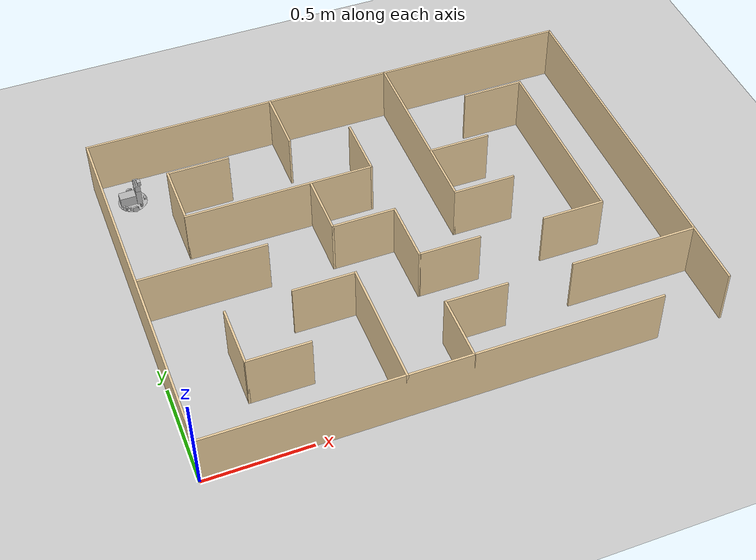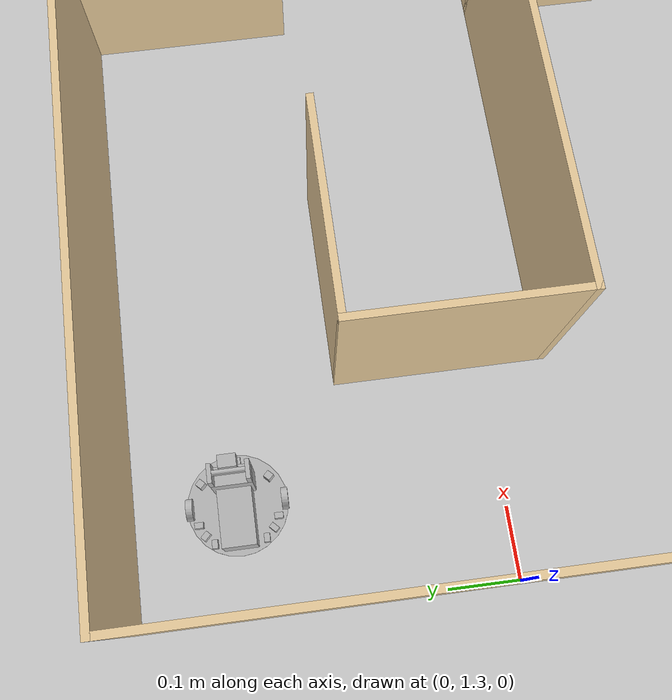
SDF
<?xml version="1.0" ?>
<sdf version="1.4">
  <world name="default">
    <scene>
      <ambient>0.5 0.5 0.5 1.0</ambient>
      <shadows>0</shadows>
    </scene>
    <include>
      <uri>model://ground_plane</uri>
    </include>
    <include>
      <uri>model://sun</uri>
    </include>
    <include>
      <uri>model://iti0201_robot</uri>
      <name>iti0201_robot</name>
      <pose>0.15 1.67 0 0 0 0</pose> <!-- this is the robot's starting position, if you know where it should be, you can change this -->
    </include>

    <model name='newMap1'>
    <pose frame=''>1.21 0.91 0 0 -0 0</pose>
    <link name='Wall_0'>
      <collision name='Wall_0_Collision'>
        <geometry>
          <box>
            <size>0.31 0.01 0.28</size>
          </box>
        </geometry>
        <pose frame=''>0 0 0.14 0 -0 0</pose>
      </collision>
      <visual name='Wall_0_Visual'>
        <pose frame=''>0 0 0.14 0 -0 0</pose>
        <geometry>
          <box>
            <size>0.31 0.01 0.28</size>
          </box>
        </geometry>
        <material>
          <script>
            <uri>file://media/materials/scripts/gazebo.material</uri>
            <name>Gazebo/Grey</name>
          </script>
          <ambient>0.921569 0.807843 0.615686 1</ambient>
        </material>
        <meta>
          <layer>0</layer>
        </meta>
      </visual>
      <pose frame=''>-0.3 0.76 0 0 0 -1.5708</pose>
    </link>
    <link name='Wall_11'>
      <collision name='Wall_11_Collision'>
        <geometry>
          <box>
            <size>2.43 0.01 0.28</size>
          </box>
        </geometry>
        <pose frame=''>0 0 0.14 0 -0 0</pose>
      </collision>
      <visual name='Wall_11_Visual'>
        <pose frame=''>0 0 0.14 0 -0 0</pose>
        <geometry>
          <box>
            <size>2.43 0.01 0.28</size>
          </box>
        </geometry>
        <material>
          <script>
            <uri>file://media/materials/scripts/gazebo.material</uri>
            <name>Gazebo/Grey</name>
          </script>
          <ambient>0.921569 0.807843 0.615686 1</ambient>
        </material>
        <meta>
          <layer>0</layer>
        </meta>
      </visual>
      <pose frame=''>0 0.91 0 0 -0 0</pose>
    </link>
    <link name='Wall_13'>
      <collision name='Wall_13_Collision'>
        <geometry>
          <box>
            <size>1.83 0.01 0.28</size>
          </box>
        </geometry>
        <pose frame=''>0 0 0.14 0 -0 0</pose>
      </collision>
      <visual name='Wall_13_Visual'>
        <pose frame=''>0 0 0.14 0 -0 0</pose>
        <geometry>
          <box>
            <size>1.83 0.01 0.28</size>
          </box>
        </geometry>
        <material>
          <script>
            <uri>file://media/materials/scripts/gazebo.material</uri>
            <name>Gazebo/Grey</name>
          </script>
          <ambient>0.921569 0.807843 0.615686 1</ambient>
        </material>
        <meta>
          <layer>0</layer>
        </meta>
      </visual>
      <pose frame=''>-1.21 0 0 0 -0 1.5708</pose>
    </link>
    <link name='Wall_15'>
      <collision name='Wall_15_Collision'>
        <geometry>
          <box>
            <size>2.11 0.01 0.28</size>
          </box>
        </geometry>
        <pose frame=''>0 0 0.14 0 -0 0</pose>
      </collision>
      <visual name='Wall_15_Visual'>
        <pose frame=''>0 0 0.14 0 -0 0</pose>
        <geometry>
          <box>
            <size>2.11 0.01 0.28</size>
          </box>
        </geometry>
        <material>
          <script>
            <uri>file://media/materials/scripts/gazebo.material</uri>
            <name>Gazebo/Grey</name>
          </script>
          <ambient>0.921569 0.807843 0.615686 1</ambient>
        </material>
        <meta>
          <layer>0</layer>
        </meta>
      </visual>
      <pose frame=''>-0.16 -0.91 0 0 -0 0</pose>
    </link>
    <link name='Wall_17'>
      <collision name='Wall_17_Collision'>
        <geometry>
          <box>
            <size>0.3 0.01 0.28</size>
          </box>
        </geometry>
        <pose frame=''>0 0 0.14 0 -0 0</pose>
      </collision>
      <visual name='Wall_17_Visual'>
        <pose frame=''>0 0 0.14 0 -0 0</pose>
        <geometry>
          <box>
            <size>0.3 0.01 0.28</size>
          </box>
        </geometry>
        <material>
          <script>
            <uri>file://media/materials/scripts/gazebo.material</uri>
            <name>Gazebo/Grey</name>
          </script>
          <ambient>0.921569 0.807843 0.615686 1</ambient>
        </material>
        <meta>
          <layer>0</layer>
        </meta>
      </visual>
      <pose frame=''>-0.445 -0.3 0 0 -0 0</pose>
    </link>
    <link name='Wall_2'>
      <collision name='Wall_2_Collision'>
        <geometry>
          <box>
            <size>0.61 0.01 0.28</size>
          </box>
        </geometry>
        <pose frame=''>0 0 0.14 0 -0 0</pose>
      </collision>
      <visual name='Wall_2_Visual'>
        <pose frame=''>0 0 0.14 0 -0 0</pose>
        <geometry>
          <box>
            <size>0.61 0.01 0.28</size>
          </box>
        </geometry>
        <material>
          <script>
            <uri>file://media/materials/scripts/gazebo.material</uri>
            <name>Gazebo/Grey</name>
          </script>
          <ambient>0.921569 0.807843 0.615686 1</ambient>
        </material>
        <meta>
          <layer>0</layer>
        </meta>
      </visual>
      <pose frame=''>-0.91 0 0 0 -0 0</pose>
    </link>
    <link name='Wall_21'>
      <collision name='Wall_21_Collision'>
        <geometry>
          <box>
            <size>0.62 0.01 0.28</size>
          </box>
        </geometry>
        <pose frame=''>0 0 0.14 0 -0 0</pose>
      </collision>
      <visual name='Wall_21_Visual'>
        <pose frame=''>0 0 0.14 0 -0 0</pose>
        <geometry>
          <box>
            <size>0.62 0.01 0.28</size>
          </box>
        </geometry>
        <material>
          <script>
            <uri>file://media/materials/scripts/gazebo.material</uri>
            <name>Gazebo/Grey</name>
          </script>
          <ambient>0.921569 0.807843 0.615686 1</ambient>
        </material>
        <meta>
          <layer>0</layer>
        </meta>
      </visual>
      <pose frame=''>-0.3 -0.605 0 0 0 -1.5708</pose>
    </link>
    <link name='Wall_23'>
      <collision name='Wall_23_Collision'>
        <geometry>
          <box>
            <size>0.3 0.01 0.28</size>
          </box>
        </geometry>
        <pose frame=''>0 0 0.14 0 -0 0</pose>
      </collision>
      <visual name='Wall_23_Visual'>
        <pose frame=''>0 0 0.14 0 -0 0</pose>
        <geometry>
          <box>
            <size>0.3 0.01 0.28</size>
          </box>
        </geometry>
        <material>
          <script>
            <uri>file://media/materials/scripts/gazebo.material</uri>
            <name>Gazebo/Grey</name>
          </script>
          <ambient>0.921569 0.807843 0.615686 1</ambient>
        </material>
        <meta>
          <layer>0</layer>
        </meta>
      </visual>
      <pose frame=''>0.445 0 0 0 -0 0</pose>
    </link>
    <link name='Wall_25'>
      <collision name='Wall_25_Collision'>
        <geometry>
          <box>
            <size>0.3 0.01 0.28</size>
          </box>
        </geometry>
        <pose frame=''>0 0 0.14 0 -0 0</pose>
      </collision>
      <visual name='Wall_25_Visual'>
        <pose frame=''>0 0 0.14 0 -0 0</pose>
        <geometry>
          <box>
            <size>0.3 0.01 0.28</size>
          </box>
        </geometry>
        <material>
          <script>
            <uri>file://media/materials/scripts/gazebo.material</uri>
            <name>Gazebo/Grey</name>
          </script>
          <ambient>0.921569 0.807843 0.615686 1</ambient>
        </material>
        <meta>
          <layer>0</layer>
        </meta>
      </visual>
      <pose frame=''>0.445 0.3 0 0 -0 0</pose>
    </link>
    <link name='Wall_28'>
      <collision name='Wall_28_Collision'>
        <geometry>
          <box>
            <size>0.92 0.01 0.28</size>
          </box>
        </geometry>
        <pose frame=''>0 0 0.14 0 -0 0</pose>
      </collision>
      <visual name='Wall_28_Visual'>
        <pose frame=''>0 0 0.14 0 -0 0</pose>
        <geometry>
          <box>
            <size>0.92 0.01 0.28</size>
          </box>
        </geometry>
        <material>
          <script>
            <uri>file://media/materials/scripts/gazebo.material</uri>
            <name>Gazebo/Grey</name>
          </script>
          <ambient>0.921569 0.807843 0.615686 1</ambient>
        </material>
        <meta>
          <layer>0</layer>
        </meta>
      </visual>
      <pose frame=''>0.3 0.455 0 0 0 -1.5708</pose>
    </link>
    <link name='Wall_30'>
      <collision name='Wall_30_Collision'>
        <geometry>
          <box>
            <size>0.3 0.01 0.28</size>
          </box>
        </geometry>
        <pose frame=''>0 0 0.14 0 -0 0</pose>
      </collision>
      <visual name='Wall_30_Visual'>
        <pose frame=''>0 0 0.14 0 -0 0</pose>
        <geometry>
          <box>
            <size>0.3 0.01 0.28</size>
          </box>
        </geometry>
        <material>
          <script>
            <uri>file://media/materials/scripts/gazebo.material</uri>
            <name>Gazebo/Grey</name>
          </script>
          <ambient>0.921569 0.807843 0.615686 1</ambient>
        </material>
        <meta>
          <layer>0</layer>
        </meta>
      </visual>
      <pose frame=''>0.755 -0.3 0 0 -0 3.14159</pose>
    </link>
    <link name='Wall_32'>
      <collision name='Wall_32_Collision'>
        <geometry>
          <box>
            <size>0.91 0.01 0.28</size>
          </box>
        </geometry>
        <pose frame=''>0 0 0.14 0 -0 0</pose>
      </collision>
      <visual name='Wall_32_Visual'>
        <pose frame=''>0 0 0.14 0 -0 0</pose>
        <geometry>
          <box>
            <size>0.91 0.01 0.28</size>
          </box>
        </geometry>
        <material>
          <script>
            <uri>file://media/materials/scripts/gazebo.material</uri>
            <name>Gazebo/Grey</name>
          </script>
          <ambient>0.921569 0.807843 0.615686 1</ambient>
        </material>
        <meta>
          <layer>0</layer>
        </meta>
      </visual>
      <pose frame=''>0.9 0.15 0 0 0 -1.5708</pose>
    </link>
    <link name='Wall_34'>
      <collision name='Wall_34_Collision'>
        <geometry>
          <box>
            <size>0.3 0.01 0.28</size>
          </box>
        </geometry>
        <pose frame=''>0 0 0.14 0 -0 0</pose>
      </collision>
      <visual name='Wall_34_Visual'>
        <pose frame=''>0 0 0.14 0 -0 0</pose>
        <geometry>
          <box>
            <size>0.3 0.01 0.28</size>
          </box>
        </geometry>
        <material>
          <script>
            <uri>file://media/materials/scripts/gazebo.material</uri>
            <name>Gazebo/Grey</name>
          </script>
          <ambient>0.921569 0.807843 0.615686 1</ambient>
        </material>
        <meta>
          <layer>0</layer>
        </meta>
      </visual>
      <pose frame=''>0.755 0.6 0 0 -0 0</pose>
    </link>
    <link name='Wall_36'>
      <collision name='Wall_36_Collision'>
        <geometry>
          <box>
            <size>0.61 0.01 0.28</size>
          </box>
        </geometry>
        <pose frame=''>0 0 0.14 0 -0 0</pose>
      </collision>
      <visual name='Wall_36_Visual'>
        <pose frame=''>0 0 0.14 0 -0 0</pose>
        <geometry>
          <box>
            <size>0.61 0.01 0.28</size>
          </box>
        </geometry>
        <material>
          <script>
            <uri>file://media/materials/scripts/gazebo.material</uri>
            <name>Gazebo/Grey</name>
          </script>
          <ambient>0.921569 0.807843 0.615686 1</ambient>
        </material>
        <meta>
          <layer>0</layer>
        </meta>
      </visual>
      <pose frame=''>0.91 -0.6 0 0 -0 0</pose>
    </link>
    <link name='Wall_40'>
      <collision name='Wall_40_Collision'>
        <geometry>
          <box>
            <size>0.3 0.01 0.28</size>
          </box>
        </geometry>
        <pose frame=''>0 0 0.14 0 -0 0</pose>
      </collision>
      <visual name='Wall_40_Visual'>
        <pose frame=''>0 0 0.14 0 -0 0</pose>
        <geometry>
          <box>
            <size>0.3 0.01 0.28</size>
          </box>
        </geometry>
        <material>
          <script>
            <uri>file://media/materials/scripts/gazebo.material</uri>
            <name>Gazebo/Grey</name>
          </script>
          <ambient>0.921569 0.807843 0.615686 1</ambient>
        </material>
        <meta>
          <layer>0</layer>
        </meta>
      </visual>
      <pose frame=''>0.145 -0.6 0 0 -0 0</pose>
    </link>
    <link name='Wall_42'>
      <collision name='Wall_42_Collision'>
        <geometry>
          <box>
            <size>0.32 0.01 0.28</size>
          </box>
        </geometry>
        <pose frame=''>0 0 0.14 0 -0 0</pose>
      </collision>
      <visual name='Wall_42_Visual'>
        <pose frame=''>0 0 0.14 0 -0 0</pose>
        <geometry>
          <box>
            <size>0.32 0.01 0.28</size>
          </box>
        </geometry>
        <material>
          <script>
            <uri>file://media/materials/scripts/gazebo.material</uri>
            <name>Gazebo/Grey</name>
          </script>
          <ambient>0.921569 0.807843 0.615686 1</ambient>
        </material>
        <meta>
          <layer>0</layer>
        </meta>
      </visual>
      <pose frame=''>0 -0.755 0 0 -0 1.5708</pose>
    </link>
    <link name='Wall_44'>
      <collision name='Wall_44_Collision'>
        <geometry>
          <box>
            <size>0.3 0.01 0.28</size>
          </box>
        </geometry>
        <pose frame=''>0 0 0.14 0 -0 0</pose>
      </collision>
      <visual name='Wall_44_Visual'>
        <pose frame=''>0 0 0.14 0 -0 0</pose>
        <geometry>
          <box>
            <size>0.3 0.01 0.28</size>
          </box>
        </geometry>
        <material>
          <script>
            <uri>file://media/materials/scripts/gazebo.material</uri>
            <name>Gazebo/Grey</name>
          </script>
          <ambient>0.921569 0.807843 0.615686 1</ambient>
        </material>
        <meta>
          <layer>0</layer>
        </meta>
      </visual>
      <pose frame=''>0.145 -0.3 0 0 -0 0</pose>
    </link>
    <link name='Wall_46'>
      <collision name='Wall_46_Collision'>
        <geometry>
          <box>
            <size>0.31 0.01 0.28</size>
          </box>
        </geometry>
        <pose frame=''>0 0 0.14 0 -0 0</pose>
      </collision>
      <visual name='Wall_46_Visual'>
        <pose frame=''>0 0 0.14 0 -0 0</pose>
        <geometry>
          <box>
            <size>0.31 0.01 0.28</size>
          </box>
        </geometry>
        <material>
          <script>
            <uri>file://media/materials/scripts/gazebo.material</uri>
            <name>Gazebo/Grey</name>
          </script>
          <ambient>0.921569 0.807843 0.615686 1</ambient>
        </material>
        <meta>
          <layer>0</layer>
        </meta>
      </visual>
      <pose frame=''>0 -0.15 0 0 0 -1.5708</pose>
    </link>
    <link name='Wall_48'>
      <collision name='Wall_48_Collision'>
        <geometry>
          <box>
            <size>0.31 0.01 0.28</size>
          </box>
        </geometry>
        <pose frame=''>0 0 0.14 0 -0 0</pose>
      </collision>
      <visual name='Wall_48_Visual'>
        <pose frame=''>0 0 0.14 0 -0 0</pose>
        <geometry>
          <box>
            <size>0.31 0.01 0.28</size>
          </box>
        </geometry>
        <material>
          <script>
            <uri>file://media/materials/scripts/gazebo.material</uri>
            <name>Gazebo/Grey</name>
          </script>
          <ambient>0.921569 0.807843 0.615686 1</ambient>
        </material>
        <meta>
          <layer>0</layer>
        </meta>
      </visual>
      <pose frame=''>-0.15 0 0 0 -0 0</pose>
    </link>
    <link name='Wall_5'>
      <collision name='Wall_5_Collision'>
        <geometry>
          <box>
            <size>0.3 0.01 0.28</size>
          </box>
        </geometry>
        <pose frame=''>0 0 0.14 0 -0 0</pose>
      </collision>
      <visual name='Wall_5_Visual'>
        <pose frame=''>0 0 0.14 0 -0 0</pose>
        <geometry>
          <box>
            <size>0.3 0.01 0.28</size>
          </box>
        </geometry>
        <material>
          <script>
            <uri>file://media/materials/scripts/gazebo.material</uri>
            <name>Gazebo/Grey</name>
          </script>
          <ambient>0.921569 0.807843 0.615686 1</ambient>
        </material>
        <meta>
          <layer>0</layer>
        </meta>
      </visual>
      <pose frame=''>-0.9 -0.455 0 0 -0 1.5708</pose>
    </link>
    <link name='Wall_50'>
      <collision name='Wall_50_Collision'>
        <geometry>
          <box>
            <size>0.31 0.01 0.28</size>
          </box>
        </geometry>
        <pose frame=''>0 0 0.14 0 -0 0</pose>
      </collision>
      <visual name='Wall_50_Visual'>
        <pose frame=''>0 0 0.14 0 -0 0</pose>
        <geometry>
          <box>
            <size>0.31 0.01 0.28</size>
          </box>
        </geometry>
        <material>
          <script>
            <uri>file://media/materials/scripts/gazebo.material</uri>
            <name>Gazebo/Grey</name>
          </script>
          <ambient>0.921569 0.807843 0.615686 1</ambient>
        </material>
        <meta>
          <layer>0</layer>
        </meta>
      </visual>
      <pose frame=''>-0.3 0.15 0 0 0 -1.5708</pose>
    </link>
    <link name='Wall_52'>
      <collision name='Wall_52_Collision'>
        <geometry>
          <box>
            <size>0.3 0.01 0.28</size>
          </box>
        </geometry>
        <pose frame=''>0 0 0.14 0 -0 0</pose>
      </collision>
      <visual name='Wall_52_Visual'>
        <pose frame=''>0 0 0.14 0 -0 0</pose>
        <geometry>
          <box>
            <size>0.3 0.01 0.28</size>
          </box>
        </geometry>
        <material>
          <script>
            <uri>file://media/materials/scripts/gazebo.material</uri>
            <name>Gazebo/Grey</name>
          </script>
          <ambient>0.921569 0.807843 0.615686 1</ambient>
        </material>
        <meta>
          <layer>0</layer>
        </meta>
      </visual>
      <pose frame=''>0 0.445 0 0 -0 1.5708</pose>
    </link>
    <link name='Wall_54'>
      <collision name='Wall_54_Collision'>
        <geometry>
          <box>
            <size>0.91 0.01 0.28</size>
          </box>
        </geometry>
        <pose frame=''>0 0 0.14 0 -0 0</pose>
      </collision>
      <visual name='Wall_54_Visual'>
        <pose frame=''>0 0 0.14 0 -0 0</pose>
        <geometry>
          <box>
            <size>0.91 0.01 0.28</size>
          </box>
        </geometry>
        <material>
          <script>
            <uri>file://media/materials/scripts/gazebo.material</uri>
            <name>Gazebo/Grey</name>
          </script>
          <ambient>0.921569 0.807843 0.615686 1</ambient>
        </material>
        <meta>
          <layer>0</layer>
        </meta>
      </visual>
      <pose frame=''>-0.45 0.3 0 0 -0 0</pose>
    </link>
    <link name='Wall_56'>
      <collision name='Wall_56_Collision'>
        <geometry>
          <box>
            <size>0.31 0.01 0.28</size>
          </box>
        </geometry>
        <pose frame=''>0 0 0.14 0 -0 0</pose>
      </collision>
      <visual name='Wall_56_Visual'>
        <pose frame=''>0 0 0.14 0 -0 0</pose>
        <geometry>
          <box>
            <size>0.31 0.01 0.28</size>
          </box>
        </geometry>
        <material>
          <script>
            <uri>file://media/materials/scripts/gazebo.material</uri>
            <name>Gazebo/Grey</name>
          </script>
          <ambient>0.921569 0.807843 0.615686 1</ambient>
        </material>
        <meta>
          <layer>0</layer>
        </meta>
      </visual>
      <pose frame=''>-0.9 0.45 0 0 -0 1.5708</pose>
    </link>
    <link name='Wall_58'>
      <collision name='Wall_58_Collision'>
        <geometry>
          <box>
            <size>0.3 0.01 0.28</size>
          </box>
        </geometry>
        <pose frame=''>0 0 0.14 0 -0 0</pose>
      </collision>
      <visual name='Wall_58_Visual'>
        <pose frame=''>0 0 0.14 0 -0 0</pose>
        <geometry>
          <box>
            <size>0.3 0.01 0.28</size>
          </box>
        </geometry>
        <material>
          <script>
            <uri>file://media/materials/scripts/gazebo.material</uri>
            <name>Gazebo/Grey</name>
          </script>
          <ambient>0.921569 0.807843 0.615686 1</ambient>
        </material>
        <meta>
          <layer>0</layer>
        </meta>
      </visual>
      <pose frame=''>-0.755 0.6 0 0 -0 0</pose>
    </link>
    <link name='Wall_7'>
      <collision name='Wall_7_Collision'>
        <geometry>
          <box>
            <size>0.3 0.01 0.28</size>
          </box>
        </geometry>
        <pose frame=''>0 0 0.14 0 -0 0</pose>
      </collision>
      <visual name='Wall_7_Visual'>
        <pose frame=''>0 0 0.14 0 -0 0</pose>
        <geometry>
          <box>
            <size>0.3 0.01 0.28</size>
          </box>
        </geometry>
        <material>
          <script>
            <uri>file://media/materials/scripts/gazebo.material</uri>
            <name>Gazebo/Grey</name>
          </script>
          <ambient>0.921569 0.807843 0.615686 1</ambient>
        </material>
        <meta>
          <layer>0</layer>
        </meta>
      </visual>
      <pose frame=''>-0.755 -0.6 0 0 -0 0</pose>
    </link>
    <link name='Wall_9'>
      <collision name='Wall_9_Collision'>
        <geometry>
          <box>
            <size>1.83 0.01 0.28</size>
          </box>
        </geometry>
        <pose frame=''>0 0 0.14 0 -0 0</pose>
      </collision>
      <visual name='Wall_9_Visual'>
        <pose frame=''>0 0 0.14 0 -0 0</pose>
        <geometry>
          <box>
            <size>1.83 0.01 0.28</size>
          </box>
        </geometry>
        <material>
          <script>
            <uri>file://media/materials/scripts/gazebo.material</uri>
            <name>Gazebo/Grey</name>
          </script>
          <ambient>0.921569 0.807843 0.615686 1</ambient>
        </material>
        <meta>
          <layer>0</layer>
        </meta>
      </visual>
      <pose frame=''>1.21 0 0 0 0 -1.5708</pose>
    </link>
    <static>1</static>
  </model>

  </world>
</sdf>

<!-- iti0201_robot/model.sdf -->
<sdf version='1.4'>
  	<model name="iti0201_robot">
  		<static>false</static>

      <!-- LINK 1: Chassis, connect wheels and base to this. -->
      <link name="chassis">
        <pose>0 0 0.0152 0 0 0</pose>
      </link>

      <joint type="fixed" name="chassis_to_base">
        <pose>0 0 0 0 0 0</pose>
        <child>base</child>
        <parent>chassis</parent>
        <axis>
          <xyz>0 0 0</xyz>
        </axis>
      </joint>

      <!-- LINK 2: Base, contains caster wheels, base, brainbox and base for camera stand. -->
  		<link name='base'>
        <pose>0 0 .006 0 0 0</pose>

          <inertial>
            <mass>50</mass>
          </inertial>

          <collision name='base_collision'>
            <geometry>
              <cylinder>
                <radius>.069912</radius>
                <length>0.001591</length>
              </cylinder>
            </geometry>
          </collision>

          <visual name='base_visual'>
            <geometry>
              <cylinder>
                <radius>.069912</radius>
                <length>0.001591</length>
              </cylinder>
            </geometry>
          </visual>

          <collision name="brainbox_collision">
            <pose>-0.022 0 0.02641535 0 0 0</pose>
            <geometry>
              <box>
                <size>.077304 .0468221 .0512397</size>
              </box>
            </geometry>
          </collision>

          <visual name="brainbox_visual">
            <pose>-0.022 0 0.02641535 0 0 0</pose>
            <geometry>
              <box>
                <size>.077304 .0468221 .0512397</size>
              </box>
            </geometry>
          </visual>

          <collision name="camera_stand_collision">
            <pose>0.02940475 0 0.0402758 0 0 0</pose>
            <geometry>
              <box>
                <size>.0255021 .0553499 .0789606</size>
              </box>
            </geometry>
          </collision>

          <visual name="camera_stand_visual">
            <pose>0.02940475 0 0.0402758 0 0 0</pose>
            <geometry>
              <box>
                <size>.0255021 .0553499 .0789606</size>
              </box>
            </geometry>
          </visual>

          <collision name="camera_stand_right_wall_collision">
          <pose>0.02940475 -0.02467495 0.0970561 0 0 0</pose>
            <geometry>
              <box>
                <size>.0255021 .006 .0346</size>
              </box>
            </geometry>
          </collision>

          <visual name="camera_stand_right_wall_visual">
          <pose>0.02940475 -0.02467495 0.0970561 0 0 0</pose>
            <geometry>
              <box>
                <size>.0255021 .006 .0346</size>
              </box>
            </geometry>
          </visual>

          <collision name="camera_stand_left_wall_collision">
          <pose>0.02940475 0.02467495 0.0970561 0 0 0</pose>
            <geometry>
              <box>
                <size>.0255021 .006 .0346</size>
              </box>
            </geometry>
          </collision>

          <visual name="camera_stand_left_wall_visual">
          <pose>0.02940475 0.02467495 0.0970561 0 0 0</pose>
            <geometry>
              <box>
                <size>.0255021 .006 .0346</size>
              </box>
            </geometry>
          </visual>

          <collision name='front_caster_collision'>
            <pose>0.035 0 -0.001 0 0 0</pose>
            <geometry>
                <sphere>
                <radius>.004648</radius>
              </sphere>
            </geometry>

            <surface>
              <friction>
                <ode>
                  <mu>0</mu>
                  <mu2>0</mu2>
                  <slip1>1.0</slip1>
                  <slip2>1.0</slip2>
                </ode>
              </friction>
            </surface>
          </collision>

          <visual name='front_caster_visual'>
            <pose>0.035 0 -0.001 0 0 0</pose>
            <geometry>
              <sphere>
                <radius>.004648</radius>
              </sphere>
            </geometry>
          </visual>

          <collision name='rear_caster_collision'>
            <pose>-0.035 0 -0.001 0 0 0</pose>
            <geometry>
                <sphere>
                <radius>.004648</radius>
              </sphere>
            </geometry>

            <surface>
              <friction>
                <ode>
                  <mu>0</mu>
                  <mu2>0</mu2>
                  <slip1>1.0</slip1>
                  <slip2>1.0</slip2>
                </ode>
              </friction>
            </surface>
          </collision>

          <visual name='rear_caster_visual'>
            <pose>-0.035 0 -0.001 0 0 0</pose>
            <geometry>
              <sphere>
                <radius>.004648</radius>
              </sphere>
            </geometry>
          </visual>
      </link>

      <!-- LINKS 3-11: Infrared sensors. -->
      <link name="front_right_45deg_ir">
        <pose>0.0326151 -0.0470558 0.0167955 0 0 0.78535</pose>
        <collision name="collision">
          <geometry>
            <box>
              <size>.01 .01 .02</size>
            </box>
          </geometry>
        </collision>
        <visual name="visual">
          <geometry>
            <box>
              <size>.01 .01 .02</size>
            </box>
          </geometry>
        </visual>
      </link>

      <joint type="fixed" name="front_right_45deg_ir_to_base">
        <pose>0 0 0 0 0 0</pose>
        <child>front_right_45deg_ir</child>
        <parent>base</parent>
      </joint>

      <link name="front_middle_ir">
        <pose>0.059312 0 0.0117955 0 0 0</pose>
        <collision name="collision">
          <geometry>
            <box>
              <size>.01 .02 .01</size>
            </box>
          </geometry>
        </collision>
        <visual name="visual">
          <geometry>
            <box>
              <size>.01 .02 .01</size>
            </box>
          </geometry>
        </visual>
      </link>

      <joint type="fixed" name="front_middle_ir_to_base">
        <pose>0 0 0 0 0 0</pose>
        <child>front_middle_ir</child>
        <parent>base</parent>
      </joint>

      <link name="front_left_45deg_ir">
        <pose>0.0326151 0.0470558 0.0167955 0 0 0.78535</pose>
        <collision name="collision">
          <geometry>
            <box>
              <size>.01 .01 .02</size>
            </box>
          </geometry>
        </collision>
        <visual name="visual">
          <geometry>
            <box>
              <size>.01 .01 .02</size>
            </box>
          </geometry>
        </visual>
      </link>

      <joint type="fixed" name="front_left_45deg_ir_to_base">
        <pose>0 0 0 0 0 0</pose>
        <child>front_left_45deg_ir</child>
        <parent>base</parent>
      </joint>

      <link name="rear_right_90deg_ir">
        <pose>-0.0225688 -0.054749 0.014341 0 0 0</pose>
        <collision name="collision">
          <geometry>
            <box>
              <size>.008 .012 .0135</size>
            </box>
          </geometry>
        </collision>
        <visual name="visual">
          <geometry>
            <box>
              <size>.008 .012 .0135</size>
            </box>
          </geometry>
        </visual>
      </link>

      <joint type="fixed" name="rear_right_90deg_ir_to_base">
        <pose>0 0 0 0 0 0</pose>
        <child>rear_right_90deg_ir</child>
        <parent>base</parent>
      </joint>

      <link name="rear_right_45deg_ir">
        <pose>-0.037845 -0.046812 0.014341 0 0 -0.78535</pose>
        <collision name="collision">
          <geometry>
            <box>
              <size>.008 .012 .0135</size>
            </box>
          </geometry>
        </collision>
        <visual name="visual">
          <geometry>
            <box>
              <size>.008 .012 .0135</size>
            </box>
          </geometry>
        </visual>
      </link>

      <joint type="fixed" name="rear_right_45deg_ir_to_base">
        <pose>0 0 0 0 0 0</pose>
        <child>rear_right_45deg_ir</child>
        <parent>base</parent>
      </joint>

      <link name="rear_right_straight_ir">
        <pose>-0.0501109 -0.035473 0.014341 0 0 1.5707</pose>
        <collision name="collision">
          <geometry>
            <box>
              <size>.008 .012 .0135</size>
            </box>
          </geometry>
        </collision>
        <visual name="visual">
          <geometry>
            <box>
              <size>.008 .012 .0135</size>
            </box>
          </geometry>
        </visual>
      </link>

      <joint type="fixed" name="rear_right_straight_ir_to_base">
        <pose>0 0 0 0 0 0</pose>
        <child>rear_right_straight_ir</child>
        <parent>base</parent>
      </joint>

      <link name="rear_left_90deg_ir">
        <pose>-0.0225688 0.054749 0.014341 0 0 0</pose>
        <collision name="collision">
          <geometry>
            <box>
              <size>.008 .012 .0135</size>
            </box>
          </geometry>
        </collision>
        <visual name="visual">
          <geometry>
            <box>
              <size>.008 .012 .0135</size>
            </box>
          </geometry>
        </visual>
      </link>

      <joint type="fixed" name="rear_left_90deg_ir_to_base">
        <pose>0 0 0 0 0 0</pose>
        <child>rear_left_90deg_ir</child>
        <parent>base</parent>
      </joint>

      <link name="rear_left_45deg_ir">
        <pose>-0.037845 0.046812 0.014341 0 0 0.78535</pose>
        <collision name="collision">
          <geometry>
            <box>
              <size>.008 .012 .0135</size>
            </box>
          </geometry>
        </collision>
        <visual name="visual">
          <geometry>
            <box>
              <size>.008 .012 .0135</size>
            </box>
          </geometry>
        </visual>
      </link>

      <joint type="fixed" name="rear_left_45deg_ir_to_base">
        <pose>0 0 0 0 0 0</pose>
        <child>rear_left_45deg_ir</child>
        <parent>base</parent>
      </joint>

      <link name="rear_left_straight_ir">
        <pose>-0.0501109 0.035473 0.014341 0 0 1.5707</pose>
        <collision name="collision">
          <geometry>
            <box>
              <size>.008 .012 .0135</size>
            </box>
          </geometry>
        </collision>
        <visual name="visual">
          <geometry>
            <box>
              <size>.008 .012 .0135</size>
            </box>
          </geometry>
        </visual>
      </link>

      <joint type="fixed" name="rear_left_straight_ir_to_base">
        <pose>0 0 0 0 0 0</pose>
        <child>rear_left_straight_ir</child>
        <parent>base</parent>
      </joint>

      <!-- LINKS 12-17: Line following sensors. -->
      <link name="right_side_first_line_sensor_from_middle">
        <pose>-0.06289935 -0.005 0.0044545 0 0 0</pose>
        <collision name="collision">
          <geometry>
            <box>
              <size>.0025 .0035 .0015</size>
            </box>
          </geometry>
        </collision>
        <visual name="visual">
          <geometry>
            <box>
              <size>.0025 .0035 .0015</size>
            </box>
          </geometry>
        </visual>
      </link>

      <joint type="fixed" name="right_side_first_line_sensor_from_middle_to_base">
        <pose>0 0 0 0 0 0</pose>
        <child>right_side_first_line_sensor_from_middle</child>
        <parent>base</parent>
      </joint>

      <link name="left_side_first_line_sensor_from_middle">
        <pose>-0.06289935 0.005 0.0044545 0 0 0</pose>
        <collision name="collision">
          <geometry>
            <box>
              <size>.0025 .0035 .0015</size>
            </box>
          </geometry>
        </collision>
        <visual name="visual">
          <geometry>
            <box>
              <size>.0025 .0035 .0015</size>
            </box>
          </geometry>
        </visual>
      </link>

      <joint type="fixed" name="left_side_first_line_sensor_from_middle_to_base">
        <pose>0 0 0 0 0 0</pose>
        <child>left_side_first_line_sensor_from_middle</child>
        <parent>base</parent>
      </joint>

      <link name="right_side_second_line_sensor_from_middle">
        <pose>-0.06289935 -0.015 0.0044545 0 0 0</pose>
        <collision name="collision">
          <geometry>
            <box>
              <size>.0025 .0035 .0015</size>
            </box>
          </geometry>
        </collision>
        <visual name="visual">
          <geometry>
            <box>
              <size>.0025 .0035 .0015</size>
            </box>
          </geometry>
        </visual>
      </link>

      <joint type="fixed" name="right_side_second_line_sensor_from_middle_to_base">
        <pose>0 0 0 0 0 0</pose>
        <child>right_side_second_line_sensor_from_middle</child>
        <parent>base</parent>
      </joint>

      <link name="left_side_second_line_sensor_from_middle">
        <pose>-0.06289935 0.015 0.0044545 0 0 0</pose>
        <collision name="collision">
          <geometry>
            <box>
              <size>.0025 .0035 .0015</size>
            </box>
          </geometry>
        </collision>
        <visual name="visual">
          <geometry>
            <box>
              <size>.0025 .0035 .0015</size>
            </box>
          </geometry>
        </visual>
      </link>

      <joint type="fixed" name="left_side_second_line_sensor_from_middle_to_base">
        <pose>0 0 0 0 0 0</pose>
        <child>left_side_second_line_sensor_from_middle</child>
        <parent>base</parent>
      </joint>

      <link name="right_side_third_line_sensor_from_middle">
        <pose>-0.05410292 -0.035 0.0044545 0 0 0</pose>
        <collision name="collision">
          <geometry>
            <box>
              <size>.0025 .0035 .0015</size>
            </box>
          </geometry>
        </collision>
        <visual name="visual">
          <geometry>
            <box>
              <size>.0025 .0035 .0015</size>
            </box>
          </geometry>
        </visual>
      </link>

      <joint type="fixed" name="right_side_third_line_sensor_from_middle_to_base">
        <pose>0 0 0 0 0 0</pose>
        <child>right_side_third_line_sensor_from_middle</child>
        <parent>base</parent>
      </joint>

      <link name="left_side_third_line_sensor_from_middle">
        <pose>-0.05410292 0.035 0.0044545 0 0 0</pose>
        <collision name="collision">
          <geometry>
            <box>
              <size>.0025 .0035 .0015</size>
            </box>
          </geometry>
        </collision>
        <visual name="visual">
          <geometry>
            <box>
              <size>.0025 .0035 .0015</size>
            </box>
          </geometry>
        </visual>
      </link>

      <joint type="fixed" name="left_side_third_line_sensor_from_middle_to_base">
        <pose>0 0 0 0 0 0</pose>
        <child>left_side_third_line_sensor_from_middle</child>
        <parent>base</parent>
      </joint>

      <!-- LINKS 18-19: Camera. -->
      <link name="camera_stand_pole">
        <pose>0.02940475 0 0.1165341 0 1.5707 1.5707</pose>
        <collision name="collision">
          <geometry>
            <cylinder>
              <radius>.003822</radius>
              <length>.0433499</length>
            </cylinder>
          </geometry>
        </collision>
        <visual name="visual">
          <geometry>
            <cylinder>
              <radius>.003822</radius>
              <length>.0433499</length>
            </cylinder>
          </geometry>
        </visual>
      </link>

      <joint type="fixed" name="camera_stand_pole_to_base">
        <pose>0 0 0 0 0 0</pose>
        <child>camera_stand_pole</child>
        <parent>base</parent>
      </joint>

      <link name="camera">
        <pose>0.04140475 0 0.1168561 0 1.5707 0</pose>
        <collision name="collision">
          <geometry>
            <box>
              <size>.024 .024 .017</size>
            </box>
          </geometry>
        </collision>
        <visual name="visual">
          <geometry>
            <box>
              <size>.024 .024 .017</size>
            </box>
          </geometry>
        </visual>
      </link>

      <joint type="fixed" name="camera">
        <pose>0 0 0 0 0 0</pose>
        <child>camera</child>
        <parent>camera_stand_pole</parent>
      </joint>

      <!-- LINKS 20-21: Wheels. -->
     	<link name="right_wheel">
        <pose>0 -0.0655005 0.0152 0 1.5707 1.5707</pose>
        <collision name="collision">
          <geometry>
            <cylinder>
              <radius>.0152</radius>
              <length>.009</length>
            </cylinder>
          </geometry>

          <surface>
            <friction>
               <ode>
                  <!-- wheel friction coefficient -->
                  <mu>0.6</mu>
                  <!-- floor friction coefficient -->
                  <mu2>0.6</mu2>
               </ode>
            </friction>
          </surface>
        </collision>

        <inertial>
          <!-- don't know the real mass -->
          <mass>2</mass>
            <inertia>
              <!-- https://en.wikipedia.org/wiki/List_of_moments_of_inertia -->
              <ixx>0.00012902</ixx>
              <iyy>0.00012902</iyy>
              <izz>0.00023104</izz>
            </inertia>
        </inertial>

        <visual name="visual">
          <geometry>
            <cylinder>
              <radius>.0152</radius>
              <length>.009</length>
            </cylinder>
          </geometry>
        </visual>
    	</link>

      <joint type="revolute" name="right_wheel_hinge">
        <pose>0 0 -0.03 0 0 0</pose>
        <child>right_wheel</child>
        <parent>chassis</parent>
        <axis>
          <xyz>0 1 0</xyz>
        </axis>
      </joint>

    	<link name="left_wheel">
        <pose>0 0.0655005 0.0152 0 1.5707 1.5707</pose>
        <collision name="collision">
          <geometry>
            <cylinder>
              <radius>.0152</radius>
              <length>.009</length>
            </cylinder>
          </geometry>

          <surface>
            <friction>
               <ode>
                  <!-- wheel friction coefficient -->
                  <mu>0.6</mu>
                  <!-- floor friction coefficient -->
                  <mu2>0.6</mu2>
               </ode>
            </friction>
          </surface>
        </collision>

        <inertial>
          <!-- don't know the real mass -->
          <mass>2</mass>
            <inertia>
              <!-- https://en.wikipedia.org/wiki/List_of_moments_of_inertia -->
              <ixx>0.00012902</ixx>
              <iyy>0.00012902</iyy>
              <izz>0.00023104</izz>
            </inertia>
        </inertial>

        <visual name="visual">
          <geometry>
            <cylinder>
              <radius>.0152</radius>
              <length>.009</length>
            </cylinder>
          </geometry>
        </visual>
      </link>

      <joint type="revolute" name="left_wheel_hinge">
        <pose>0 0 0.03 0 0 0</pose>
        <child>left_wheel</child>
        <parent>chassis</parent>
        <axis>
          <xyz>0 1 0</xyz>
        </axis>
      </joint>
      <plugin name="wheel_plugin" filename="libwheel_plugin.so"/>
  </model>
</sdf>
